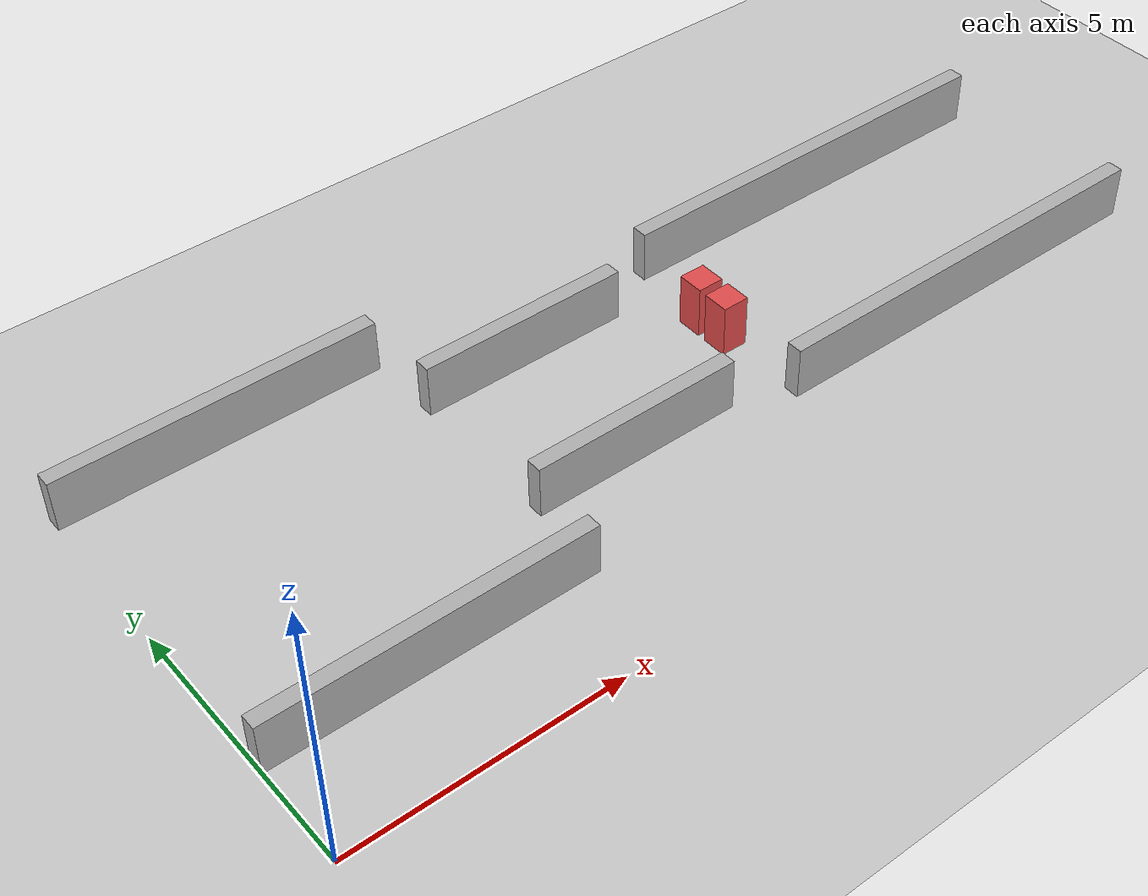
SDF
<sdf version="1.6">
 <world name="tb3_progressive">
  <physics type="ode"><max_step_size>0.001</max_step_size><real_time_factor>1</real_time_factor></physics>
  <include><uri>model://sun</uri></include>
  <include><uri>model://ground_plane</uri></include>
  <model name="wall_L1">
   <static>true</static>
   <pose>3 2.0 0.5 0 0 0</pose>
   <link name="link">
    <collision name="c"><geometry><box><size>6 0.3 1</size></box></geometry></collision>
    <visual name="v">
     <geometry><box><size>6 0.3 1</size></box></geometry>
     <material><ambient>0.7 0.7 0.7 1</ambient></material>
    </visual>
   </link>
  </model>
  <model name="wall_R1">
   <static>true</static>
   <pose>3 8.0 0.5 0 0 0</pose>
   <link name="link">
    <collision name="c"><geometry><box><size>6 0.3 1</size></box></geometry></collision>
    <visual name="v">
     <geometry><box><size>6 0.3 1</size></box></geometry>
     <material><ambient>0.7 0.7 0.7 1</ambient></material>
    </visual>
   </link>
  </model>
  <model name="wall_L2">
   <static>true</static>
   <pose>8 3.5 0.5 0 0 0</pose>
   <link name="link">
    <collision name="c"><geometry><box><size>4 0.3 1</size></box></geometry></collision>
    <visual name="v">
     <geometry><box><size>4 0.3 1</size></box></geometry>
     <material><ambient>0.7 0.7 0.7 1</ambient></material>
    </visual>
   </link>
  </model>
  <model name="wall_R2">
   <static>true</static>
   <pose>8 6.5 0.5 0 0 0</pose>
   <link name="link">
    <collision name="c"><geometry><box><size>4 0.3 1</size></box></geometry></collision>
    <visual name="v">
     <geometry><box><size>4 0.3 1</size></box></geometry>
     <material><ambient>0.7 0.7 0.7 1</ambient></material>
    </visual>
   </link>
  </model>
  <model name="pinch_L">
   <static>true</static>
   <pose>11 4.68 0.5 0 0 0</pose>
   <link name="link">
    <collision name="c"><geometry><box><size>0.5 0.5 1</size></box></geometry></collision>
    <visual name="v">
     <geometry><box><size>0.5 0.5 1</size></box></geometry>
     <material><ambient>0.9 0.3 0.3 1</ambient></material>
    </visual>
   </link>
  </model>
  <model name="pinch_R">
   <static>true</static>
   <pose>11 5.33 0.5 0 0 0</pose>
   <link name="link">
    <collision name="c"><geometry><box><size>0.5 0.5 1</size></box></geometry></collision>
    <visual name="v">
     <geometry><box><size>0.5 0.5 1</size></box></geometry>
     <material><ambient>0.9 0.3 0.3 1</ambient></material>
    </visual>
   </link>
  </model>
  <model name="wall_L3">
   <static>true</static>
   <pose>15 3.0 0.5 0 0 0</pose>
   <link name="link">
    <collision name="c"><geometry><box><size>8 0.3 1</size></box></geometry></collision>
    <visual name="v">
     <geometry><box><size>8 0.3 1</size></box></geometry>
     <material><ambient>0.7 0.7 0.7 1</ambient></material>
    </visual>
   </link>
  </model>
  <model name="wall_R3">
   <static>true</static>
   <pose>15 7.0 0.5 0 0 0</pose>
   <link name="link">
    <collision name="c"><geometry><box><size>8 0.3 1</size></box></geometry></collision>
    <visual name="v">
     <geometry><box><size>8 0.3 1</size></box></geometry>
     <material><ambient>0.7 0.7 0.7 1</ambient></material>
    </visual>
   </link>
  </model>
 </world>
</sdf>
